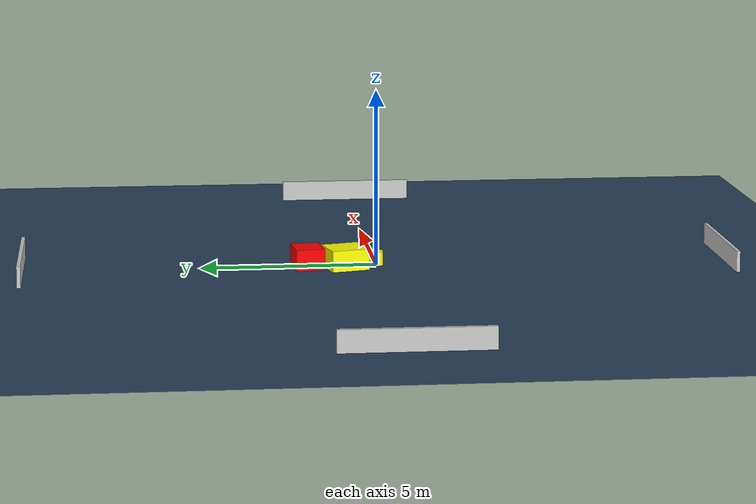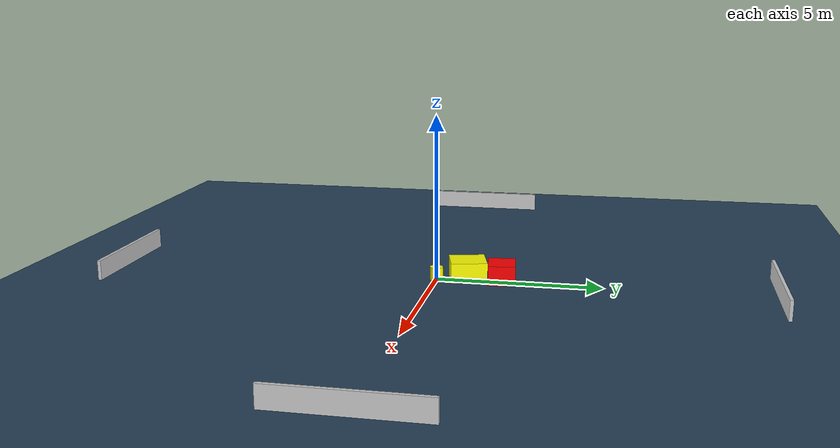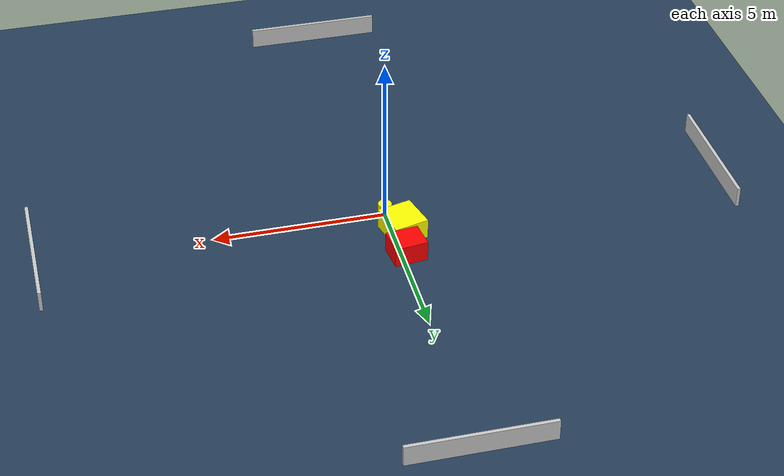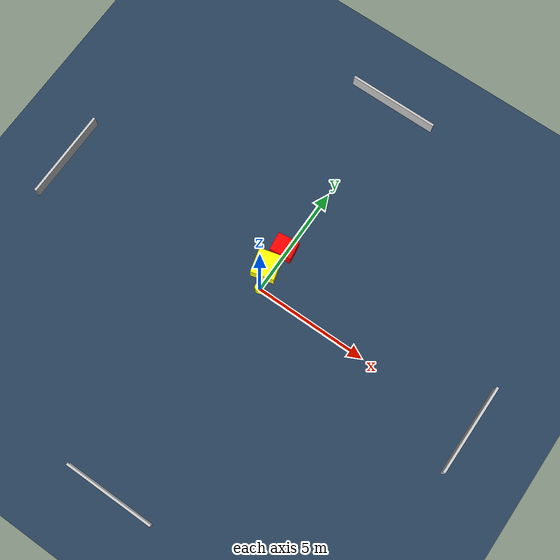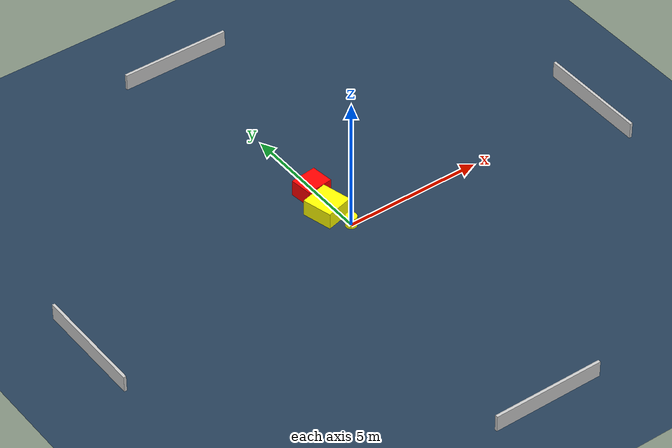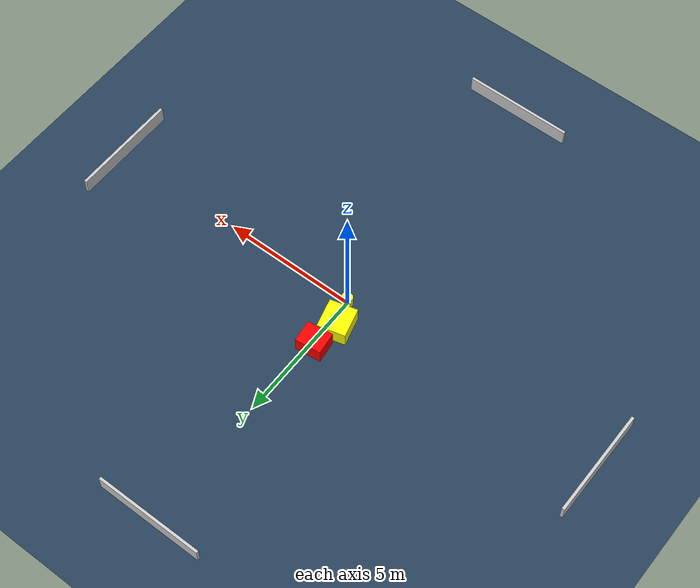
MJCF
<?xml version="1.0" ?>
<mujoco model="generated_environment">
  <option timestep="0.01" integrator="RK4" cone="elliptic"/>
  <default>
    <geom density="1"/>
  </default>
  <asset>
    <texture builtin="gradient" height="3072" name="skybox" rgb1="0.3 0.5 0.7" rgb2="0 0 0" type="skybox" width="512"/>
    <texture builtin="checker" height="300" name="groundplane" rgb1="0.2 0.3 0.4" rgb2="0.1 0.2 0.3" type="2d" width="300"/>
    <material name="groundplane" reflectance="0.2" texrepeat="5 5" texture="groundplane"/>
  </asset>
  <worldbody>
    <light dir="0 0 -1" directional="true" pos="0 0 1.5"/>
    <geom condim="3" friction="0.5 0.005 0.001" material="groundplane" name="floor" pos="0 0 0" size="0 0 0.05" type="plane"/>
    <body name="walls">
      <geom name="wall_1" condim="4" pos="-10.0 0.0 0.3" rgba="0.800000011920929 0.800000011920929 0.800000011920929 1.0" size="0.05 2.0 0.3" type="box"/>
      <geom name="wall_2" condim="4" pos="10.0 0.0 0.3" rgba="0.800000011920929 0.800000011920929 0.800000011920929 1.0" size="0.05 2.0 0.3" type="box"/>
      <geom name="wall_3" condim="4" pos="0.0 -10.0 0.3" rgba="0.800000011920929 0.800000011920929 0.800000011920929 1.0" size="2.0 0.05 0.3" type="box"/>
      <geom name="wall_4" condim="4" pos="0.0 10.0 0.3" rgba="0.800000011920929 0.800000011920929 0.800000011920929 1.0" size="2.0 0.05 0.3" type="box"/>
    </body>
    <body name="robot">
      <joint name="joint_x" type="slide" pos="0 0 0" axis="1 0 0"/>
      <joint name="joint_y" type="slide" pos="0 0 0" axis="0 1 0"/>
      <geom name="robot" type="cylinder" pos="0.0 0.0 0.2" size="0.2 0.2 0.0" mass="5.0" friction="1.0 0.005 0.0001" condim="4" rgba="1.0 1.0 0.0 1.0"/>
    </body>
    <body name="obstacle_1_movable">
      <geom name="obstacle_1_movable" condim="4" pos="-0.29861545586005506 0.9133835643224333 0.3" euler="0 0 104.38780730058807" friction="0.0 0.005 0.001" rgba="1.0 1.0 0.0 1.0" size="0.5454760551869571 0.5105231210733723 0.3" type="box" mass="0.1"/>
      <joint type="free"/>
    </body>
    <body name="obstacle_2_static">
      <geom name="obstacle_2_static" condim="4" pos="-0.1414159618250709 1.964765667906626 0.3" euler="0 0 276.9775340046152" friction="0.0 0.005 0.001" rgba="1.0 0.0 0.0 1.0" size="0.40784747228619056 0.47757434302256657 0.3" type="box"/>
    </body>
  </worldbody>
  <actuator>
    <motor name="actuator_x" joint="joint_x" gear="1" ctrlrange="-1 1"/>
    <motor name="actuator_y" joint="joint_y" gear="1" ctrlrange="-1 1"/>
  </actuator>
</mujoco>
